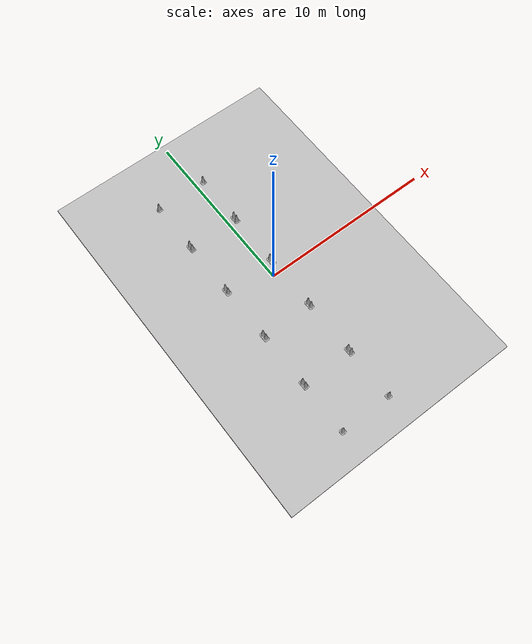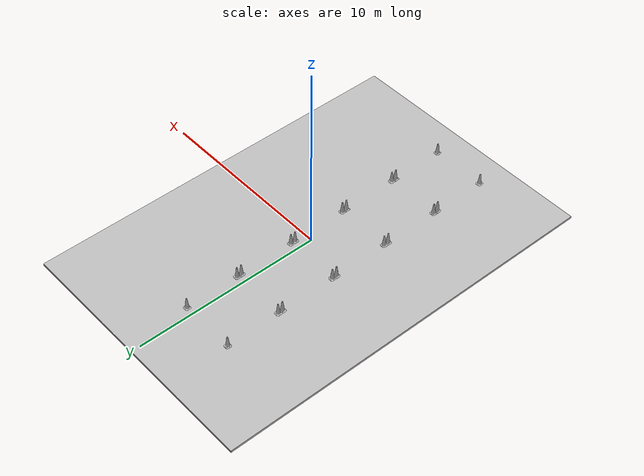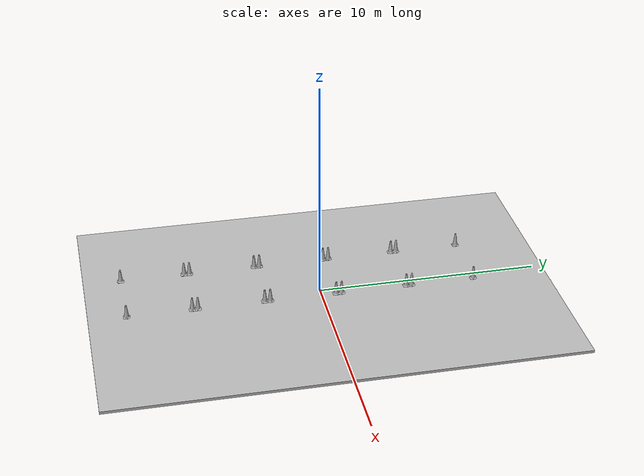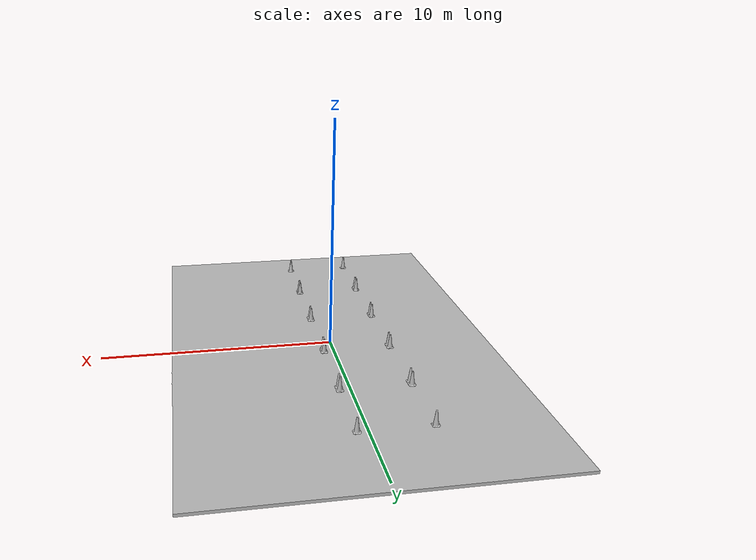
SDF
<sdf version="1.6">
 <world name="default">
  <gravity>0 0 -9.8</gravity>
  <physics default="0" name="default_physics" type="ode">
   <max_step_size>0.001</max_step_size>
   <real_time_factor>1</real_time_factor>
   <real_time_update_rate>1000</real_time_update_rate>
  </physics>
  <model name="aws_robomaker_warehouse_GroundB_01_001">
   <include><uri>model://aws_robomaker_warehouse_GroundB_01</uri></include>
   <pose>0.0 0.0 -0.090092 0 0 0</pose>
  </model>
  <model name="construction_cone_001">
   <include><uri>model://construction_cone</uri></include>
   <pose>-2.5 3.9 0 0 0 0</pose>
  </model>
  <model name="construction_cone_002">
   <include><uri>model://construction_cone</uri></include>
   <pose>-2.5 0.9 0 0 0 0</pose>
  </model>
  <model name="construction_cone_003">
   <include><uri>model://construction_cone</uri></include>
   <pose>0.45 0.9 0 0 0 0</pose>
  </model>
  <model name="construction_cone_004">
   <include><uri>model://construction_cone</uri></include>
   <pose>0.45 3.9 0 0 0 0</pose>
  </model>
  <model name="construction_cone_005">
   <include><uri>model://construction_cone</uri></include>
   <pose>-2.5 4.15 0 0 0 0</pose>
  </model>
  <model name="construction_cone_006">
   <include><uri>model://construction_cone</uri></include>
   <pose>-2.5 7.05 0 0 0 0</pose>
  </model>
  <model name="construction_cone_007">
   <include><uri>model://construction_cone</uri></include>
   <pose>0.45 7.05 0 0 0 0</pose>
  </model>
  <model name="construction_cone_008">
   <include><uri>model://construction_cone</uri></include>
   <pose>0.45 4.15 0 0 0 0</pose>
  </model>
  <model name="construction_cone_009">
   <include><uri>model://construction_cone</uri></include>
   <pose>-2.5 0.65 0 0 0 0</pose>
  </model>
  <model name="construction_cone_010">
   <include><uri>model://construction_cone</uri></include>
   <pose>0.45 0.65 0 0 0 0</pose>
  </model>
  <model name="construction_cone_011">
   <include><uri>model://construction_cone</uri></include>
   <pose>0.45 -2.35 0 0 0 0</pose>
  </model>
  <model name="construction_cone_012">
   <include><uri>model://construction_cone</uri></include>
   <pose>-2.5 -2.35 0 0 0 0</pose>
  </model>
  <model name="construction_cone_013">
   <include><uri>model://construction_cone</uri></include>
   <pose>-2.5 -2.6 0 0 0 0</pose>
  </model>
  <model name="construction_cone_014">
   <include><uri>model://construction_cone</uri></include>
   <pose>-2.5 -5.6 0 0 0 0</pose>
  </model>
  <model name="construction_cone_015">
   <include><uri>model://construction_cone</uri></include>
   <pose>0.45 -5.6 0 0 0 0</pose>
  </model>
  <model name="construction_cone_016">
   <include><uri>model://construction_cone</uri></include>
   <pose>0.45 -2.6 0 0 0 0</pose>
  </model>
  <model name="construction_cone_017">
   <include><uri>model://construction_cone</uri></include>
   <pose>-2.5 -5.85 0 0 0 0</pose>
  </model>
  <model name="construction_cone_018">
   <include><uri>model://construction_cone</uri></include>
   <pose>-2.5 -8.75 0 0 0 0</pose>
  </model>
  <model name="construction_cone_019">
   <include><uri>model://construction_cone</uri></include>
   <pose>0.45 -8.75 0 0 0 0</pose>
  </model>
  <model name="construction_cone_020">
   <include><uri>model://construction_cone</uri></include>
   <pose>0.45 -5.85 0 0 0 0</pose>
  </model>
  <light name="Warehouse_CeilingLight_003" type="point">
   <pose>0 0 9 0 0 0</pose>
   <diffuse>0.5 0.5 0.5 1</diffuse>
   <specular>0.2 0.2 0.2 1</specular>
   <attenuation>
    <range>80</range>
    <constant>0.3</constant>
    <linear>0.01</linear>
    <quadratic>0.001</quadratic>
   </attenuation>
   <direction>0.1 0.1 -1</direction>
  </light>
  <scene><shadows>false</shadows><grid>false</grid><origin_visual>false</origin_visual></scene>
 </world>
</sdf>

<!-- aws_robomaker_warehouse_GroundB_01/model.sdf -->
<sdf version="1.6">
  <model name="aws_robomaker_warehouse_GroundB_01">
    <link name="link">
      <inertial>
        <mass>1000</mass>
        <inertia>
          <ixx>1200083.33</ixx>
          <ixy>0</ixy>
          <ixz>0</ixz>
          <iyy>8333416.66</iyy>
          <iyz>0</iyz>
          <izz>2033333.33</izz>
        </inertia>
      </inertial>
      <collision name="collision">
        <geometry>
          <mesh>
            <uri>model://aws_robomaker_warehouse_GroundB_01/meshes/aws_robomaker_warehouse_GroundB_01_collision.DAE</uri>
            <scale>1 1 1</scale>
          </mesh>
        </geometry>
        <surface>
          <friction>
            <ode>
              <mu>100</mu>
              <mu2>50</mu2>
              <fdir1>0 0 0</fdir1>
              <slip1>0</slip1>
              <slip2>0</slip2>
            </ode>
          </friction>
        </surface>
      </collision>
      <visual name="visual">
        <geometry>
          <mesh>
            <uri>model://aws_robomaker_warehouse_GroundB_01/meshes/aws_robomaker_warehouse_GroundB_01_visual.DAE</uri>
            <scale>1 1 1</scale>
          </mesh>
        </geometry>
        <meta><layer>1</layer></meta>
      </visual>
    </link>
    <static>1</static>
  </model>
</sdf>

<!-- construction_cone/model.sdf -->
<sdf version="6.5">
  <model name="Construction Cone">
    <link name="link">
      <collision name="collision">
        <geometry>
          <mesh>
            <scale>6 6 6</scale>
            <uri>model://construction_cone/meshes/construction_cone.dae</uri>
          </mesh>
        </geometry>
      </collision>
      <visual name="visual">
        <geometry>
          <mesh>
            <scale>6 6 6</scale>
            <uri>model://construction_cone/meshes/construction_cone.dae</uri>
          </mesh>
        </geometry>
      </visual>
    </link>
  </model>
</sdf>
